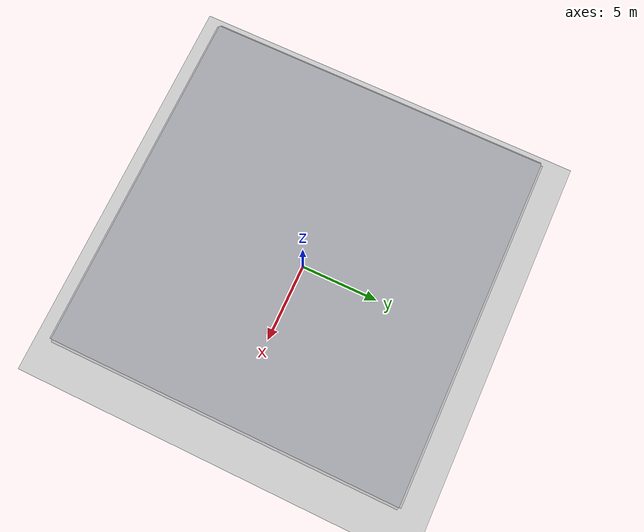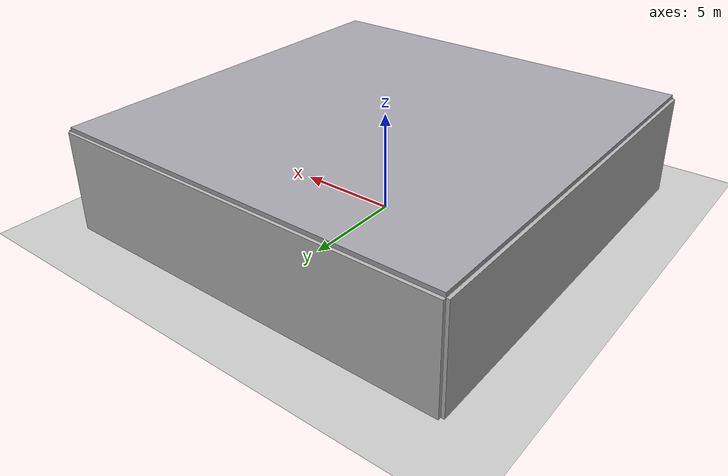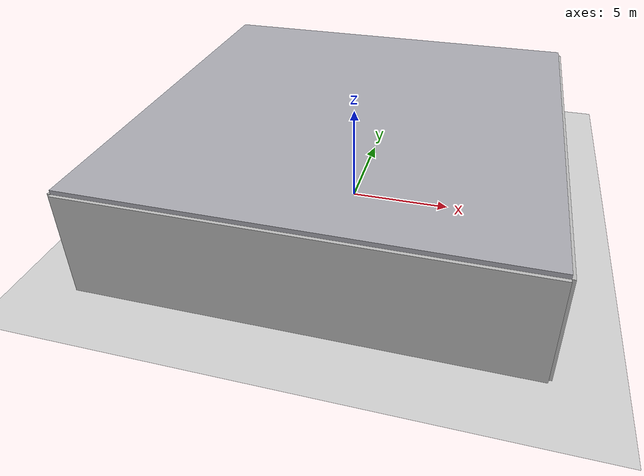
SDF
<?xml version="1.0"?>
<sdf version="1.7">
  <world name="ego_warehouse">
    <include><uri>model://sun</uri></include>
    <include><uri>model://ground_plane</uri></include>
    <physics type="ode"><max_step_size>0.004</max_step_size><real_time_update_rate>250</real_time_update_rate></physics>
    <scene><ambient>0.35 0.35 0.35 1</ambient><background>0.55 0.63 0.72 1</background></scene>
    <model name="wall_north"><static>true</static><pose>10 0 2.5 0 0 0</pose><link name="link"><collision name="collision"><geometry><box><size>0.3 20 5</size></box></geometry></collision><visual name="visual"><geometry><box><size>0.3 20 5</size></box></geometry></visual></link></model>
    <model name="wall_south"><static>true</static><pose>-10 0 2.5 0 0 0</pose><link name="link"><collision name="collision"><geometry><box><size>0.3 20 5</size></box></geometry></collision><visual name="visual"><geometry><box><size>0.3 20 5</size></box></geometry></visual></link></model>
    <model name="wall_east"><static>true</static><pose>0 10 2.5 0 0 0</pose><link name="link"><collision name="collision"><geometry><box><size>20 0.3 5</size></box></geometry></collision><visual name="visual"><geometry><box><size>20 0.3 5</size></box></geometry></visual></link></model>
    <model name="wall_west"><static>true</static><pose>0 -10 2.5 0 0 0</pose><link name="link"><collision name="collision"><geometry><box><size>20 0.3 5</size></box></geometry></collision><visual name="visual"><geometry><box><size>20 0.3 5</size></box></geometry></visual></link></model>
    <model name="ceiling"><static>true</static><pose>0 0 5.1 0 0 0</pose><link name="link"><collision name="collision"><geometry><box><size>20 20 0.2</size></box></geometry></collision><visual name="visual"><geometry><box><size>20 20 0.2</size></box></geometry><material><ambient>0.55 0.55 0.58 1</ambient><diffuse>0.65 0.65 0.68 1</diffuse></material></visual></link></model>
    <model name="pillar_a"><static>true</static><pose>3 -2 2 0 0 0</pose><link name="link"><collision name="collision"><geometry><cylinder><radius>0.45</radius><length>4</length></cylinder></geometry></collision><visual name="visual"><geometry><cylinder><radius>0.45</radius><length>4</length></cylinder></geometry></visual></link></model>
    <model name="pillar_b"><static>true</static><pose>5 1.5 2 0 0 0</pose><link name="link"><collision name="collision"><geometry><cylinder><radius>0.45</radius><length>4</length></cylinder></geometry></collision><visual name="visual"><geometry><cylinder><radius>0.45</radius><length>4</length></cylinder></geometry></visual></link></model>
    <model name="pillar_c"><static>true</static><pose>1.5 3.7 2 0 0 0</pose><link name="link"><collision name="collision"><geometry><cylinder><radius>0.45</radius><length>4</length></cylinder></geometry></collision><visual name="visual"><geometry><cylinder><radius>0.45</radius><length>4</length></cylinder></geometry></visual></link></model>
    <model name="pillar_d"><static>true</static><pose>-2 1.5 2 0 0 0</pose><link name="link"><collision name="collision"><geometry><cylinder><radius>0.45</radius><length>4</length></cylinder></geometry></collision><visual name="visual"><geometry><cylinder><radius>0.45</radius><length>4</length></cylinder></geometry></visual></link></model>
    <model name="block_a"><static>true</static><pose>4 -5 1.25 0 0 0</pose><link name="link"><collision name="collision"><geometry><box><size>1.2 1.2 2.5</size></box></geometry></collision><visual name="visual"><geometry><box><size>1.2 1.2 2.5</size></box></geometry></visual></link></model>
    <model name="block_b"><static>true</static><pose>-3 -3.5 1.25 0 0 0</pose><link name="link"><collision name="collision"><geometry><box><size>1.2 1.2 2.5</size></box></geometry></collision><visual name="visual"><geometry><box><size>1.2 1.2 2.5</size></box></geometry></visual></link></model>
    <model name="block_c"><static>true</static><pose>-5 3 1.25 0 0 0</pose><link name="link"><collision name="collision"><geometry><box><size>1.2 1.2 2.5</size></box></geometry></collision><visual name="visual"><geometry><box><size>1.2 1.2 2.5</size></box></geometry></visual></link></model>
  </world>
</sdf>
